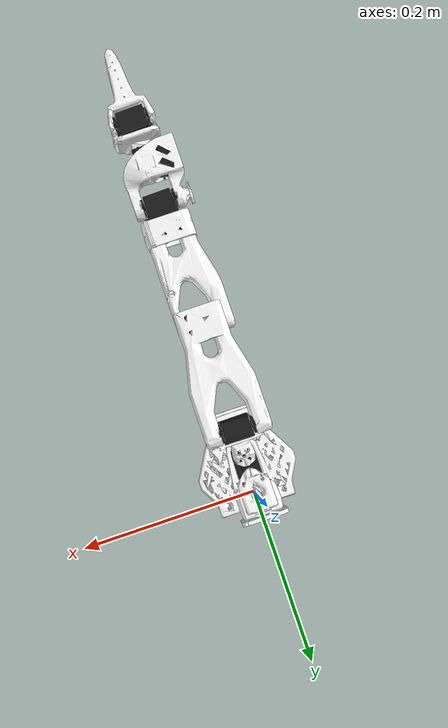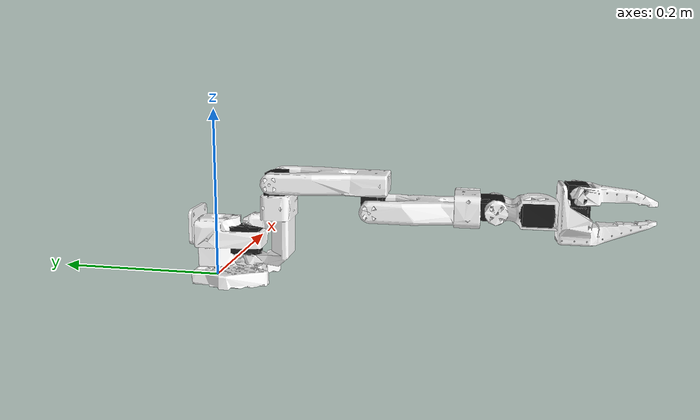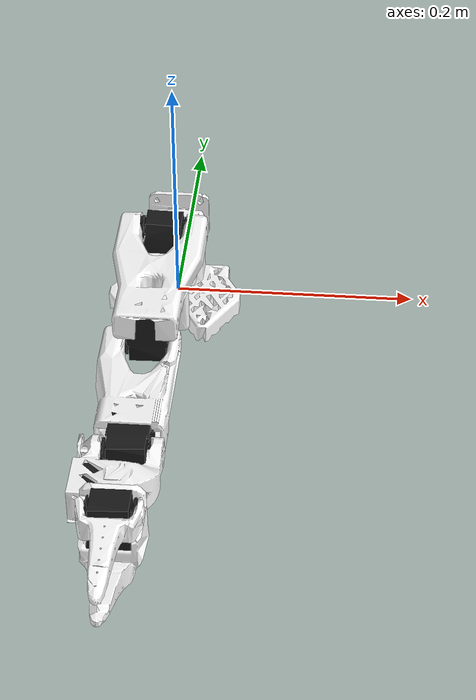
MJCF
<mujoco model="so100_reach">
  <compiler angle="radian" meshdir="assets/"/>

  <option timestep="0.002"/>

  <asset>
    <material name="white" rgba="1 1 1 1"/>
    <material name="black" rgba="0.1 0.1 0.1 1"/>

    <mesh name="Base" file="Base.stl"/>
    <mesh name="Base_Motor" file="Base_Motor.stl"/>
    <mesh name="Rotation_Pitch" file="Rotation_Pitch.stl"/>
    <mesh name="Rotation_Pitch_Motor" file="Rotation_Pitch_Motor.stl"/>
    <mesh name="Upper_Arm" file="Upper_Arm.stl"/>
    <mesh name="Upper_Arm_Motor" file="Upper_Arm_Motor.stl"/>
    <mesh name="Lower_Arm" file="Lower_Arm.stl"/>
    <mesh name="Lower_Arm_Motor" file="Lower_Arm_Motor.stl"/>
    <mesh name="Wrist_Pitch_Roll" file="Wrist_Pitch_Roll.stl"/>
    <mesh name="Wrist_Pitch_Roll_Motor" file="Wrist_Pitch_Roll_Motor.stl"/>
    <mesh name="Fixed_Jaw" file="Fixed_Jaw.stl"/>
    <mesh name="Fixed_Jaw_Motor" file="Fixed_Jaw_Motor.stl"/>
    <mesh name="Moving_Jaw" file="Moving_Jaw.stl"/>
  </asset>

  <default>
    <default class="so_arm100">
      <joint frictionloss="0.1" armature="0.1"/>
      <position kp="50" dampratio="1" forcerange="-3.5 3.5"/>
      <default class="Rotation">
        <joint axis="0 1 0" range="-1.92 1.92"/>
      </default>
      <default class="Pitch">
        <joint axis="1 0 0" range="-3.32 0.174"/>
      </default>
      <default class="Elbow">
        <joint axis="1 0 0" range="-0.174 3.14"/>
      </default>
      <default class="Wrist_Pitch">
        <joint axis="1 0 0" range="-1.66 1.66"/>
      </default>
      <default class="Wrist_Roll">
        <joint axis="0 1 0" range="-2.79 2.79"/>
      </default>
      <default class="visual">
        <geom type="mesh" contype="0" conaffinity="0" density="0" group="2" material="white"/>
        <default class="motor_visual">
          <geom material="black"/>
        </default>
      </default>
    </default>
  </default>

  <worldbody>
    <body name="Base" childclass="so_arm100">
      <geom type="mesh" mesh="Base" class="visual"/>
      <geom type="mesh" mesh="Base_Motor" class="motor_visual"/>
      <body name="Rotation_Pitch" pos="0 -0.0452 0.0165" quat="0.707105 0.707108 0 0">
        <inertial pos="-9.07886e-05 0.0590972 0.031089" quat="0.363978 0.441169 -0.623108 0.533504" mass="0.119226"
          diaginertia="5.94278e-05 5.89975e-05 3.13712e-05"/>
        <joint name="Rotation" class="Rotation"/>
        <geom type="mesh" mesh="Rotation_Pitch" class="visual"/>
        <geom type="mesh" mesh="Rotation_Pitch_Motor" class="motor_visual"/>
        <body name="Upper_Arm" pos="0 0.1025 0.0306" euler="1.57079 0 0">
          <inertial pos="-1.72052e-05 0.0701802 0.00310545" quat="0.50104 0.498994 -0.493562 0.50632" mass="0.162409"
            diaginertia="0.000213312 0.000167164 7.01522e-05"/>
          <joint name="Pitch" class="Pitch"/>
          <site name="shoulder" pos="0 0 0" size="0.005" group="4"/>
          <geom type="mesh" mesh="Upper_Arm" class="visual"/>
          <geom type="mesh" mesh="Upper_Arm_Motor" class="motor_visual"/>
          <body name="Lower_Arm" pos="0 0.11257 0.028" euler="-1.57079 0 0">
            <inertial pos="-0.00339604 0.00137796 0.0768007" quat="0.701995 0.0787996 0.0645626 0.704859"
              mass="0.147968" diaginertia="0.000138803 0.000107748 4.84242e-05"/>
            <joint name="Elbow" class="Elbow"/>
            <geom type="mesh" mesh="Lower_Arm" class="visual"/>
            <geom type="mesh" mesh="Lower_Arm_Motor" class="motor_visual"/>
            <body name="Wrist_Pitch_Roll" pos="0 0.0052 0.1349" euler="-1.57079 0 0">
              <inertial pos="-0.00852653 -0.0352279 -2.34622e-05" quat="-0.0522806 0.705235 0.0549524 0.704905"
                mass="0.0661321" diaginertia="3.45403e-05 2.39041e-05 1.94704e-05"/>
              <joint name="Wrist_Pitch" class="Wrist_Pitch"/>
              <geom type="mesh" mesh="Wrist_Pitch_Roll" class="visual"/>
              <geom type="mesh" mesh="Wrist_Pitch_Roll_Motor" class="motor_visual"/>
              <body name="Fixed_Jaw" pos="0 -0.0601 0" euler="0 1.57079 0">
                <inertial pos="0.00552377 -0.0280167 0.000483583" quat="0.41836 0.620891 -0.350644 0.562599"
                  mass="0.0929859" diaginertia="5.03136e-05 4.64098e-05 2.72961e-05"/>
                <joint name="Wrist_Roll" class="Wrist_Roll"/>
                <geom type="mesh" mesh="Fixed_Jaw" class="visual"/>
                <geom type="mesh" mesh="Fixed_Jaw_Motor" class="motor_visual"/>
                <site name="tip" pos="0 -0.1 0" size="0.005" group="4"/>
                <!-- Jaw joint removed: the moving jaw is welded closed. -->
                <body name="Moving_Jaw" pos="-0.0202 -0.0244 0" quat="1.34924e-11 -3.67321e-06 1 -3.67321e-06">
                  <inertial pos="-0.00161745 -0.0303473 0.000449646" quat="0.696562 0.716737 -0.0239844 -0.0227026"
                    mass="0.0202444" diaginertia="1.11265e-05 8.99651e-06 2.99548e-06"/>
                  <geom type="mesh" mesh="Moving_Jaw" class="visual"/>
                </body>
              </body>
            </body>
          </body>
        </body>
      </body>
    </body>
  </worldbody>

  <actuator>
    <position class="Rotation" name="Rotation" joint="Rotation" inheritrange="1"/>
    <position class="Pitch" name="Pitch" joint="Pitch" inheritrange="1"/>
    <position class="Elbow" name="Elbow" joint="Elbow" inheritrange="1"/>
    <position class="Wrist_Pitch" name="Wrist_Pitch" joint="Wrist_Pitch" inheritrange="1"/>
    <position class="Wrist_Roll" name="Wrist_Roll" joint="Wrist_Roll" inheritrange="1"/>
  </actuator>

  <keyframe>
    <key name="home" qpos="0 -1.57 1.57 1.57 -1.57" ctrl="0 -1.57 1.57 1.57 -1.57"/>
  </keyframe>
</mujoco>
